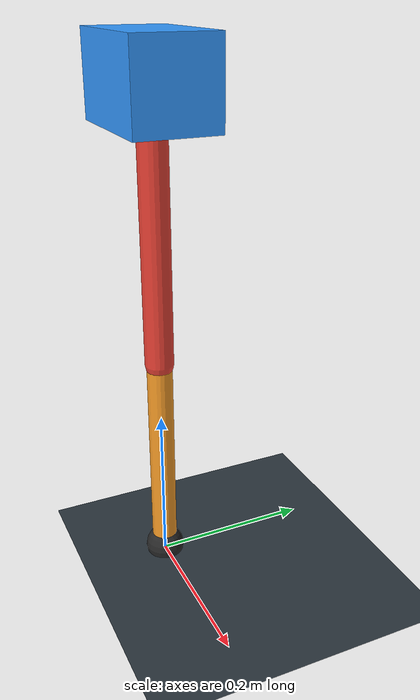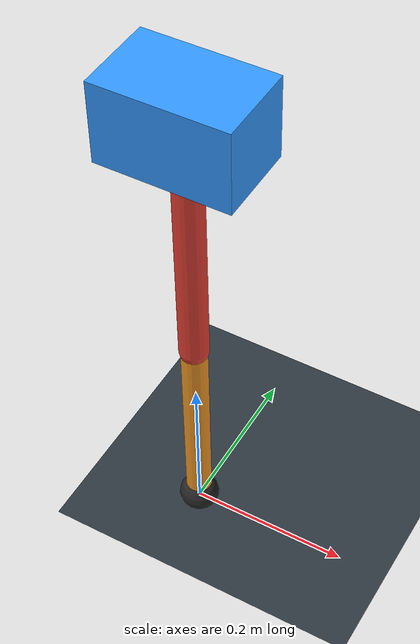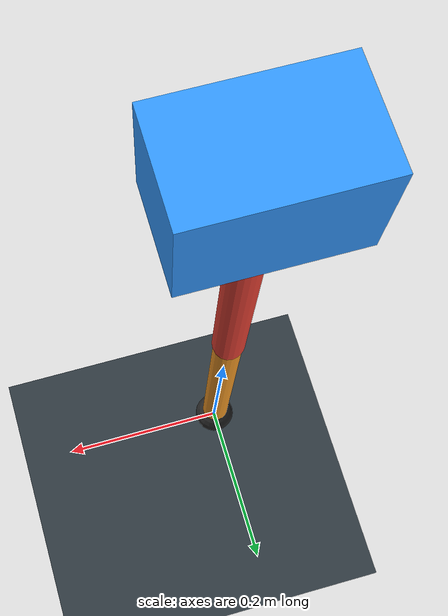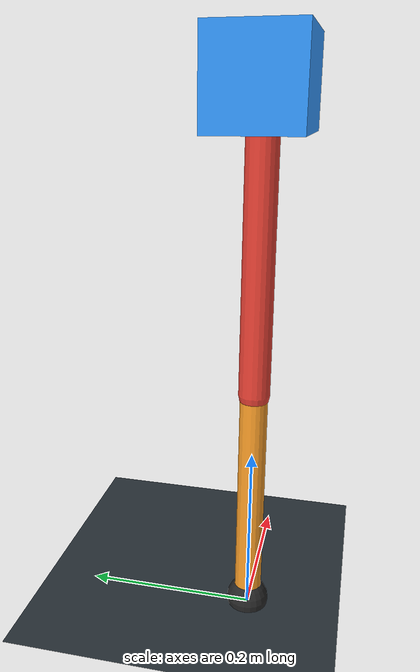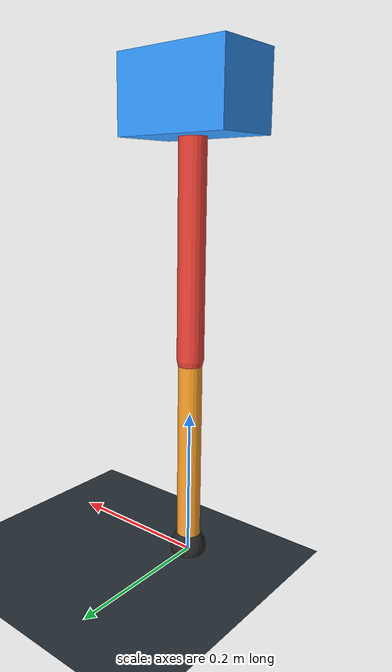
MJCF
<mujoco model="single_axis_two_bar">
  <compiler angle="radian" inertiafromgeom="true"/>
  <option timestep="0.001" integrator="implicitfast" gravity="0 0 -9.81"/>
  <default>
    <joint damping="0.08"/>
    <geom friction="1.2 0.01 0.0001" condim="3"/>
  </default>
  <worldbody>
    <geom name="floor" type="plane" size="5 5 0.1" rgba="0.18 0.22 0.25 1"/>
    <body name="carriage" pos="0 0 0.6103581760017776">
      <joint name="pole_slide" type="slide" axis="0 0 1"/>
      <geom name="payload" type="box" size="0.08 0.05 0.05" mass="2.788638074939545" rgba="0.2 0.6 1 1"/>
      <body name="thigh" pos="0 0 0">
        <joint name="hip" type="hinge" axis="0 1 0"/>
        <geom name="thigh_link" type="capsule" fromto="0 0 0 0 0 -0.33421087385807124" size="0.018" mass="0.2381296638309391" rgba="0.9 0.25 0.2 1"/>
        <body name="shank" pos="0 0 -0.33421087385807124">
          <joint name="knee" type="hinge" axis="0 1 0"/>
          <geom name="shank_link" type="capsule" fromto="0 0 0 0 0 -0.2692511632571634" size="0.016" mass="0.19184501166094894" rgba="0.95 0.6 0.15 1"/>
          <geom name="foot" type="sphere" pos="0 0 -0.2692511632571634" size="0.025" mass="0.03" rgba="0.15 0.15 0.15 1"/>
          <site name="toe" pos="0 0 -0.2692511632571634" size="0.008"/>
        </body>
      </body>
    </body>
  </worldbody>
  <actuator>
    <motor name="hip_motor" joint="hip" ctrlrange="-33.31238654385803 33.31238654385803"/>
    <motor name="knee_motor" joint="knee" ctrlrange="-101.30081744724791 101.30081744724791"/>
  </actuator>
</mujoco>
